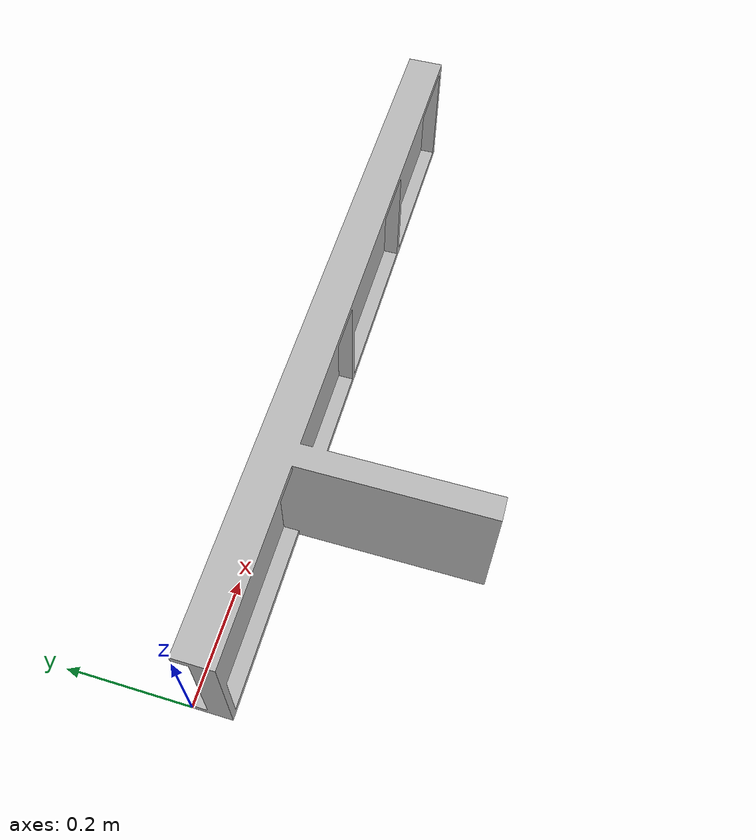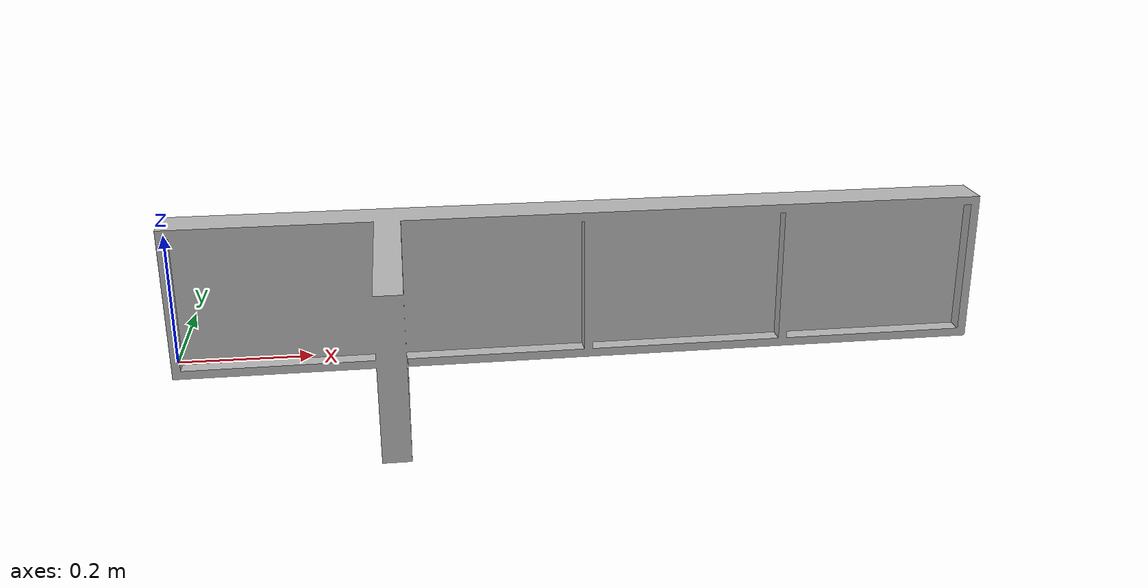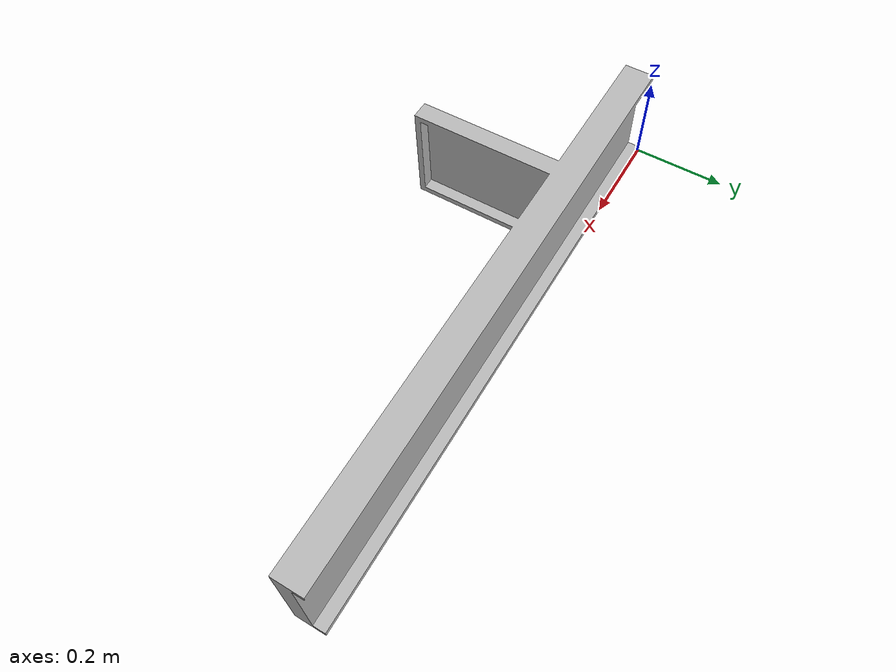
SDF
<?xml version="1.0"?>
<sdf version="1.4">
  <world name="default">

    <model name="boeing_model">
      <link name="mesh_link">
        <pose>0 0 0 0 0 0</pose>

        <collision name="mesh_collision">
          <geometry>
    	    <mesh>
	      <uri>model://gazebo_ray_trace/sdf/wood_boeing.stl</uri>
	      <scale>0.0254 0.0254 0.0254</scale>
	    </mesh>

          </geometry>

        </collision>

        <visual name="mesh_visual">
          <geometry>
    	    <mesh>
	      <uri>model://gazebo_ray_trace/sdf/wood_boeing.stl</uri>
	      <scale>0.0254 0.0254 0.0254</scale>
	    </mesh>

          </geometry>
        </visual>
      </link>
    </model>

    <plugin filename="libdistance_ray_trace.so" name="ray_tracer"/>
  </world>
</sdf>
